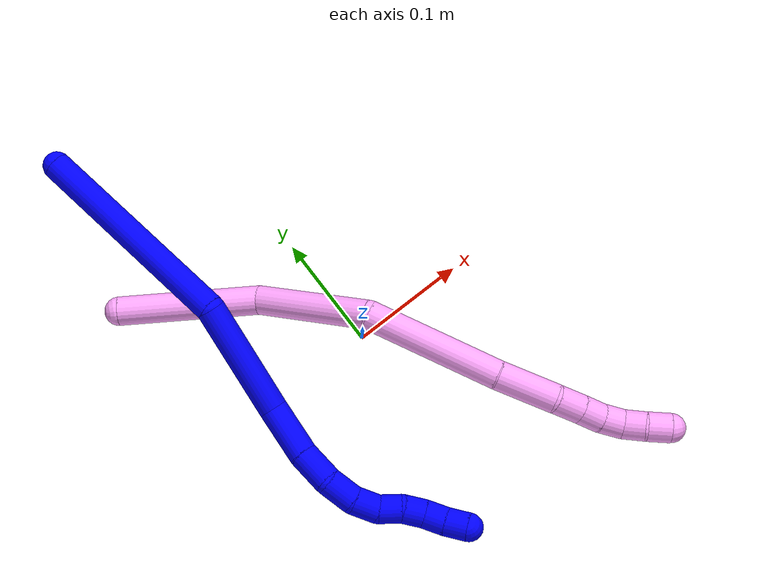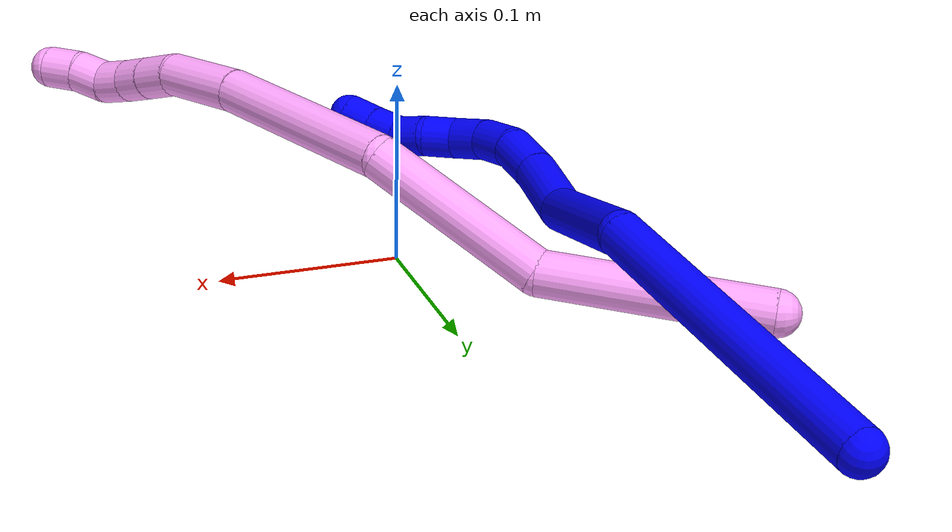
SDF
<sdf version="1.7">
 <world name="default">
  <model name="photoneo_s_sensor">
   <static>1</static>
   <pose>0 0 2 1.57079 1.57079 3.14159</pose>
   <link name="link">
    <inertial><mass>0.1</mass></inertial>
    <sensor name="sensor" type="depth">
     <update_rate>30</update_rate>
     <camera>
      <horizontal_fov>1.22</horizontal_fov>
      <image><width>1920</width><height>1200</height><format>B8G8R8</format></image>
      <clip><near>0.1</near><far>4</far></clip>
      <depth_camera><output>points</output></depth_camera>
     </camera>
     <plugin name="camera_plugin" filename="libgazebo_ros_depth_camera.so">
      <baseline>0.2</baseline>
      <alwaysOn>1</alwaysOn>
      <updateRate>0.0</updateRate>
      <cameraName>camera_ir</cameraName>
      <imageTopicName>/camera/color/image_raw</imageTopicName>
      <cameraInfoTopicName>/camera/color/camera_info</cameraInfoTopicName>
      <depthImageTopicName>/camera/depth/image_raw</depthImageTopicName>
      <depthImageCameraInfoTopicName>/camera/depth/camera_info</depthImageCameraInfoTopicName>
      <pointCloudTopicName>/camera/depth/points</pointCloudTopicName>
      <frameName>fr_optical</frameName>
      <pointCloudCutoff>0.1</pointCloudCutoff>
      <pointCloudCutoffMax>2.0</pointCloudCutoffMax>
      <distortionK1>0</distortionK1>
      <distortionK2>0</distortionK2>
      <distortionK3>0</distortionK3>
      <distortionT1>0</distortionT1>
      <distortionT2>0</distortionT2>
      <CxPrime>0</CxPrime>
      <Cx>0</Cx>
      <Cy>0</Cy>
      <focalLength>0</focalLength>
      <hackBaseline>0</hackBaseline>
     </plugin>
    </sensor>
   </link>
  </model>
  <model name="bin">
   <static>1</static>
   <link name="bottom">
    <collision name="collision-bottom">
     <pose>0 0 -0.01 0 -0 0</pose>
     <geometry><box><size>0.8 0.6 0.02</size></box></geometry>
     <surface>
      <friction><ode><mu>100</mu><mu2>100</mu2></ode></friction>
      <contact><collide_bitmask>65535</collide_bitmask></contact>
     </surface>
    </collision>
   </link>
   <link name="west_wall">
    <collision name="collision-west_wall">
     <pose>-0.41 0 0.1 0 -0 0</pose>
     <geometry><box><size>0.02 0.6 0.2</size></box></geometry>
     <surface>
      <friction><ode><mu>100</mu><mu2>100</mu2></ode></friction>
      <contact><collide_bitmask>65535</collide_bitmask></contact>
     </surface>
    </collision>
   </link>
   <link name="east_wall">
    <collision name="collision-east_wall">
     <pose>0.41 0 0.1 0 -0 0</pose>
     <geometry><box><size>0.02 0.6 0.2</size></box></geometry>
     <surface>
      <friction><ode><mu>100</mu><mu2>100</mu2></ode></friction>
      <contact><collide_bitmask>65535</collide_bitmask></contact>
     </surface>
    </collision>
   </link>
   <link name="south_wall">
    <collision name="collision-south_wall">
     <pose>0 -0.31 0.1 0 -0 0</pose>
     <geometry><box><size>0.8 0.02 0.2</size></box></geometry>
     <surface>
      <friction><ode><mu>100</mu><mu2>100</mu2></ode></friction>
      <contact><collide_bitmask>65535</collide_bitmask></contact>
     </surface>
    </collision>
   </link>
   <link name="north_wall">
    <collision name="collision-north_wall">
     <pose>0 0.31 0.1 0 -0 0</pose>
     <geometry><box><size>0.8 0.02 0.2</size></box></geometry>
     <surface>
      <friction><ode><mu>100</mu><mu2>100</mu2></ode></friction>
      <contact><collide_bitmask>65535</collide_bitmask></contact>
     </surface>
    </collision>
   </link>
  </model>
  <model name="1">
   <static>0</static>
   <link name="1">
    <collision name="collision-cylinder-e_1_1_4">
     <pose>0.021934 -0.08818 -0.027343 1.87148 0.23326 0.315351</pose>
     <geometry><cylinder><radius>0.0125</radius><length>0.189783</length></cylinder></geometry>
     <surface>
      <friction><ode><mu>1.16</mu><mu2>1.16</mu2><slip1>0</slip1><slip2>0</slip2></ode></friction>
      <contact><ode><kp>1e+06</kp><kd>1</kd><max_vel>0</max_vel><min_depth>0.001</min_depth></ode></contact>
     </surface>
    </collision>
    <visual name="visual-cylinder-e_1_1_4">
     <pose>0.021934 -0.08818 -0.027343 1.87148 0.23326 0.315351</pose>
     <geometry><cylinder><radius>0.0125</radius><length>0.189783</length></cylinder></geometry>
     <material><ambient>0 0 1 1</ambient></material>
    </visual>
    <collision name="collision-cylinder-e_2_4_5">
     <pose>0.043896 -0.213903 -0.088982 2.31102 0.000548 0.001243</pose>
     <geometry><cylinder><radius>0.0125</radius><length>0.101701</length></cylinder></geometry>
     <surface>
      <friction><ode><mu>1.16</mu><mu2>1.16</mu2><slip1>0</slip1><slip2>0</slip2></ode></friction>
      <contact><ode><kp>1e+06</kp><kd>1</kd><max_vel>0</max_vel><min_depth>0.001</min_depth></ode></contact>
     </surface>
    </collision>
    <visual name="visual-cylinder-e_2_4_5">
     <pose>0.043896 -0.213903 -0.088982 2.31102 0.000548 0.001243</pose>
     <geometry><cylinder><radius>0.0125</radius><length>0.101701</length></cylinder></geometry>
     <material><ambient>0 0 1 1</ambient></material>
    </visual>
    <collision name="collision-cylinder-e_3_5_6">
     <pose>0.0441 -0.27351 -0.131873 1.94223 0.007431 0.01087</pose>
     <geometry><cylinder><radius>0.0125</radius><length>0.047357</length></cylinder></geometry>
     <surface>
      <friction><ode><mu>1.16</mu><mu2>1.16</mu2><slip1>0</slip1><slip2>0</slip2></ode></friction>
      <contact><ode><kp>1e+06</kp><kd>1</kd><max_vel>0</max_vel><min_depth>0.001</min_depth></ode></contact>
     </surface>
    </collision>
    <visual name="visual-cylinder-e_3_5_6">
     <pose>0.0441 -0.27351 -0.131873 1.94223 0.007431 0.01087</pose>
     <geometry><cylinder><radius>0.0125</radius><length>0.047357</length></cylinder></geometry>
     <material><ambient>0 0 1 1</ambient></material>
    </visual>
    <collision name="collision-cylinder-e_4_6_7">
     <pose>0.0469 -0.310041 -0.145344 1.89596 0.170215 0.236478</pose>
     <geometry><cylinder><radius>0.0125</radius><length>0.030983</length></cylinder></geometry>
     <surface>
      <friction><ode><mu>1.16</mu><mu2>1.16</mu2><slip1>0</slip1><slip2>0</slip2></ode></friction>
      <contact><ode><kp>1e+06</kp><kd>1</kd><max_vel>0</max_vel><min_depth>0.001</min_depth></ode></contact>
     </surface>
    </collision>
    <visual name="visual-cylinder-e_4_6_7">
     <pose>0.0469 -0.310041 -0.145344 1.89596 0.170215 0.236478</pose>
     <geometry><cylinder><radius>0.0125</radius><length>0.030983</length></cylinder></geometry>
     <material><ambient>0 0 1 1</ambient></material>
    </visual>
    <collision name="collision-cylinder-e_5_7_8">
     <pose>0.054135 -0.334996 -0.157087 2.15042 0.352472 0.636458</pose>
     <geometry><cylinder><radius>0.0125</radius><length>0.026712</length></cylinder></geometry>
     <surface>
      <friction><ode><mu>1.16</mu><mu2>1.16</mu2><slip1>0</slip1><slip2>0</slip2></ode></friction>
      <contact><ode><kp>1e+06</kp><kd>1</kd><max_vel>0</max_vel><min_depth>0.001</min_depth></ode></contact>
     </surface>
    </collision>
    <visual name="visual-cylinder-e_5_7_8">
     <pose>0.054135 -0.334996 -0.157087 2.15042 0.352472 0.636458</pose>
     <geometry><cylinder><radius>0.0125</radius><length>0.026712</length></cylinder></geometry>
     <material><ambient>0 0 1 1</ambient></material>
    </visual>
    <collision name="collision-cylinder-e_6_8_9">
     <pose>0.065545 -0.352681 -0.169701 2.24477 0.635835 1.19983</pose>
     <geometry><cylinder><radius>0.0125</radius><length>0.022897</length></cylinder></geometry>
     <surface>
      <friction><ode><mu>1.16</mu><mu2>1.16</mu2><slip1>0</slip1><slip2>0</slip2></ode></friction>
      <contact><ode><kp>1e+06</kp><kd>1</kd><max_vel>0</max_vel><min_depth>0.001</min_depth></ode></contact>
     </surface>
    </collision>
    <visual name="visual-cylinder-e_6_8_9">
     <pose>0.065545 -0.352681 -0.169701 2.24477 0.635835 1.19983</pose>
     <geometry><cylinder><radius>0.0125</radius><length>0.022897</length></cylinder></geometry>
     <material><ambient>0 0 1 1</ambient></material>
    </visual>
    <collision name="collision-cylinder-e_7_9_10">
     <pose>0.081036 -0.364557 -0.177826 2.04076 1.02768 1.48721</pose>
     <geometry><cylinder><radius>0.0125</radius><length>0.020309</length></cylinder></geometry>
     <surface>
      <friction><ode><mu>1.16</mu><mu2>1.16</mu2><slip1>0</slip1><slip2>0</slip2></ode></friction>
      <contact><ode><kp>1e+06</kp><kd>1</kd><max_vel>0</max_vel><min_depth>0.001</min_depth></ode></contact>
     </surface>
    </collision>
    <visual name="visual-cylinder-e_7_9_10">
     <pose>0.081036 -0.364557 -0.177826 2.04076 1.02768 1.48721</pose>
     <geometry><cylinder><radius>0.0125</radius><length>0.020309</length></cylinder></geometry>
     <material><ambient>0 0 1 1</ambient></material>
    </visual>
    <collision name="collision-cylinder-e_8_10_11">
     <pose>0.096667 -0.374709 -0.184918 2.28186 0.76512 1.4407</pose>
     <geometry><cylinder><radius>0.0125</radius><length>0.020031</length></cylinder></geometry>
     <surface>
      <friction><ode><mu>1.16</mu><mu2>1.16</mu2><slip1>0</slip1><slip2>0</slip2></ode></friction>
      <contact><ode><kp>1e+06</kp><kd>1</kd><max_vel>0</max_vel><min_depth>0.001</min_depth></ode></contact>
     </surface>
    </collision>
    <visual name="visual-cylinder-e_8_10_11">
     <pose>0.096667 -0.374709 -0.184918 2.28186 0.76512 1.4407</pose>
     <geometry><cylinder><radius>0.0125</radius><length>0.020031</length></cylinder></geometry>
     <material><ambient>0 0 1 1</ambient></material>
    </visual>
    <collision name="collision-cylinder-e_9_11_12">
     <pose>0.109636 -0.387915 -0.192003 1.86822 0.640805 0.843691</pose>
     <geometry><cylinder><radius>0.0125</radius><length>0.020179</length></cylinder></geometry>
     <surface>
      <friction><ode><mu>1.16</mu><mu2>1.16</mu2><slip1>0</slip1><slip2>0</slip2></ode></friction>
      <contact><ode><kp>1e+06</kp><kd>1</kd><max_vel>0</max_vel><min_depth>0.001</min_depth></ode></contact>
     </surface>
    </collision>
    <visual name="visual-cylinder-e_9_11_12">
     <pose>0.109636 -0.387915 -0.192003 1.86822 0.640805 0.843691</pose>
     <geometry><cylinder><radius>0.0125</radius><length>0.020179</length></cylinder></geometry>
     <material><ambient>0 0 1 1</ambient></material>
    </visual>
    <collision name="collision-cylinder-e_10_12_2">
     <pose>0.122308 -0.40308 -0.19545 1.71475 0.72408 0.824976</pose>
     <geometry><cylinder><radius>0.0125</radius><length>0.020048</length></cylinder></geometry>
     <surface>
      <friction><ode><mu>1.16</mu><mu2>1.16</mu2><slip1>0</slip1><slip2>0</slip2></ode></friction>
      <contact><ode><kp>1e+06</kp><kd>1</kd><max_vel>0</max_vel><min_depth>0.001</min_depth></ode></contact>
     </surface>
    </collision>
    <visual name="visual-cylinder-e_10_12_2">
     <pose>0.122308 -0.40308 -0.19545 1.71475 0.72408 0.824976</pose>
     <geometry><cylinder><radius>0.0125</radius><length>0.020048</length></cylinder></geometry>
     <material><ambient>0 0 1 1</ambient></material>
    </visual>
    <collision name="collision-sphere-2">
     <pose>0.128948 -0.410511 -0.196527 0 -0 0</pose>
     <geometry><sphere><radius>0.0125</radius></sphere></geometry>
     <surface>
      <friction><ode><mu>1.16</mu><mu2>1.16</mu2><slip1>0</slip1><slip2>0</slip2></ode></friction>
      <contact><ode><kp>1e+06</kp><kd>1</kd><max_vel>0</max_vel><min_depth>0.001</min_depth></ode></contact>
     </surface>
    </collision>
    <visual name="visual-sphere-2">
     <pose>0.128948 -0.410511 -0.196527 0 -0 0</pose>
     <geometry><sphere><radius>0.0125</radius></sphere></geometry>
     <material><ambient>0 0 1 1</ambient></material>
    </visual>
    <collision name="collision-sphere-12">
     <pose>0.115668 -0.395648 -0.194373 0 -0 0</pose>
     <geometry><sphere><radius>0.0125</radius></sphere></geometry>
     <surface>
      <friction><ode><mu>1.16</mu><mu2>1.16</mu2><slip1>0</slip1><slip2>0</slip2></ode></friction>
      <contact><ode><kp>1e+06</kp><kd>1</kd><max_vel>0</max_vel><min_depth>0.001</min_depth></ode></contact>
     </surface>
    </collision>
    <visual name="visual-sphere-12">
     <pose>0.115668 -0.395648 -0.194373 0 -0 0</pose>
     <geometry><sphere><radius>0.0125</radius></sphere></geometry>
     <material><ambient>0 0 1 1</ambient></material>
    </visual>
    <collision name="collision-sphere-11">
     <pose>0.103604 -0.380183 -0.189632 0 -0 0</pose>
     <geometry><sphere><radius>0.0125</radius></sphere></geometry>
     <surface>
      <friction><ode><mu>1.16</mu><mu2>1.16</mu2><slip1>0</slip1><slip2>0</slip2></ode></friction>
      <contact><ode><kp>1e+06</kp><kd>1</kd><max_vel>0</max_vel><min_depth>0.001</min_depth></ode></contact>
     </surface>
    </collision>
    <visual name="visual-sphere-11">
     <pose>0.103604 -0.380183 -0.189632 0 -0 0</pose>
     <geometry><sphere><radius>0.0125</radius></sphere></geometry>
     <material><ambient>0 0 1 1</ambient></material>
    </visual>
    <collision name="collision-sphere-10">
     <pose>0.08973 -0.369236 -0.180203 0 -0 0</pose>
     <geometry><sphere><radius>0.0125</radius></sphere></geometry>
     <surface>
      <friction><ode><mu>1.16</mu><mu2>1.16</mu2><slip1>0</slip1><slip2>0</slip2></ode></friction>
      <contact><ode><kp>1e+06</kp><kd>1</kd><max_vel>0</max_vel><min_depth>0.001</min_depth></ode></contact>
     </surface>
    </collision>
    <visual name="visual-sphere-10">
     <pose>0.08973 -0.369236 -0.180203 0 -0 0</pose>
     <geometry><sphere><radius>0.0125</radius></sphere></geometry>
     <material><ambient>0 0 1 1</ambient></material>
    </visual>
    <collision name="collision-sphere-9">
     <pose>0.072343 -0.359878 -0.17545 0 -0 0</pose>
     <geometry><sphere><radius>0.0125</radius></sphere></geometry>
     <surface>
      <friction><ode><mu>1.16</mu><mu2>1.16</mu2><slip1>0</slip1><slip2>0</slip2></ode></friction>
      <contact><ode><kp>1e+06</kp><kd>1</kd><max_vel>0</max_vel><min_depth>0.001</min_depth></ode></contact>
     </surface>
    </collision>
    <visual name="visual-sphere-9">
     <pose>0.072343 -0.359878 -0.17545 0 -0 0</pose>
     <geometry><sphere><radius>0.0125</radius></sphere></geometry>
     <material><ambient>0 0 1 1</ambient></material>
    </visual>
    <collision name="collision-sphere-4">
     <pose>0.043868 -0.176359 -0.054686 0 -0 0</pose>
     <geometry><sphere><radius>0.0125</radius></sphere></geometry>
     <surface>
      <friction><ode><mu>1.16</mu><mu2>1.16</mu2><slip1>0</slip1><slip2>0</slip2></ode></friction>
      <contact><ode><kp>1e+06</kp><kd>1</kd><max_vel>0</max_vel><min_depth>0.001</min_depth></ode></contact>
     </surface>
    </collision>
    <visual name="visual-sphere-4">
     <pose>0.043868 -0.176359 -0.054686 0 -0 0</pose>
     <geometry><sphere><radius>0.0125</radius></sphere></geometry>
     <material><ambient>0 0 1 1</ambient></material>
    </visual>
    <collision name="collision-sphere-1">
     <geometry><sphere><radius>0.0125</radius></sphere></geometry>
     <surface>
      <friction><ode><mu>1.16</mu><mu2>1.16</mu2><slip1>0</slip1><slip2>0</slip2></ode></friction>
      <contact><ode><kp>1e+06</kp><kd>1</kd><max_vel>0</max_vel><min_depth>0.001</min_depth></ode></contact>
     </surface>
    </collision>
    <visual name="visual-sphere-1">
     <geometry><sphere><radius>0.0125</radius></sphere></geometry>
     <material><ambient>0 0 1 1</ambient></material>
    </visual>
    <collision name="collision-sphere-8">
     <pose>0.058746 -0.345484 -0.163953 0 -0 0</pose>
     <geometry><sphere><radius>0.0125</radius></sphere></geometry>
     <surface>
      <friction><ode><mu>1.16</mu><mu2>1.16</mu2><slip1>0</slip1><slip2>0</slip2></ode></friction>
      <contact><ode><kp>1e+06</kp><kd>1</kd><max_vel>0</max_vel><min_depth>0.001</min_depth></ode></contact>
     </surface>
    </collision>
    <visual name="visual-sphere-8">
     <pose>0.058746 -0.345484 -0.163953 0 -0 0</pose>
     <geometry><sphere><radius>0.0125</radius></sphere></geometry>
     <material><ambient>0 0 1 1</ambient></material>
    </visual>
    <collision name="collision-sphere-5">
     <pose>0.043924 -0.251446 -0.123279 0 -0 0</pose>
     <geometry><sphere><radius>0.0125</radius></sphere></geometry>
     <surface>
      <friction><ode><mu>1.16</mu><mu2>1.16</mu2><slip1>0</slip1><slip2>0</slip2></ode></friction>
      <contact><ode><kp>1e+06</kp><kd>1</kd><max_vel>0</max_vel><min_depth>0.001</min_depth></ode></contact>
     </surface>
    </collision>
    <visual name="visual-sphere-5">
     <pose>0.043924 -0.251446 -0.123279 0 -0 0</pose>
     <geometry><sphere><radius>0.0125</radius></sphere></geometry>
     <material><ambient>0 0 1 1</ambient></material>
    </visual>
    <collision name="collision-sphere-6">
     <pose>0.044276 -0.295573 -0.140467 0 -0 0</pose>
     <geometry><sphere><radius>0.0125</radius></sphere></geometry>
     <surface>
      <friction><ode><mu>1.16</mu><mu2>1.16</mu2><slip1>0</slip1><slip2>0</slip2></ode></friction>
      <contact><ode><kp>1e+06</kp><kd>1</kd><max_vel>0</max_vel><min_depth>0.001</min_depth></ode></contact>
     </surface>
    </collision>
    <visual name="visual-sphere-6">
     <pose>0.044276 -0.295573 -0.140467 0 -0 0</pose>
     <geometry><sphere><radius>0.0125</radius></sphere></geometry>
     <material><ambient>0 0 1 1</ambient></material>
    </visual>
    <collision name="collision-sphere-7">
     <pose>0.049525 -0.324508 -0.150222 0 -0 0</pose>
     <geometry><sphere><radius>0.0125</radius></sphere></geometry>
     <surface>
      <friction><ode><mu>1.16</mu><mu2>1.16</mu2><slip1>0</slip1><slip2>0</slip2></ode></friction>
      <contact><ode><kp>1e+06</kp><kd>1</kd><max_vel>0</max_vel><min_depth>0.001</min_depth></ode></contact>
     </surface>
    </collision>
    <visual name="visual-sphere-7">
     <pose>0.049525 -0.324508 -0.150222 0 -0 0</pose>
     <geometry><sphere><radius>0.0125</radius></sphere></geometry>
     <material><ambient>0 0 1 1</ambient></material>
    </visual>
    <inertial>
     <pose>0.046724 -0.217779 -0.096355 0 -0 0</pose>
     <mass>0.5</mass>
     <inertia>
      <ixx>0.000836</ixx>
      <ixy>0</ixy>
      <ixz>0</ixz>
      <iyy>-3.8e-05</iyy>
      <iyz>0</iyz>
      <izz>0.000469</izz>
     </inertia>
    </inertial>
   </link>
   <pose>-0.119352 0.279738 0.012337 -0.476734 0.057044 -0.082074</pose>
  </model>
  <model name="4">
   <static>0</static>
   <link name="4">
    <collision name="collision-cylinder-e_1_1_4">
     <pose>0.006272 -0.006898 -0.060333 3.02775 0.102923 1.46993</pose>
     <geometry><cylinder><radius>0.0125</radius><length>0.122099</length></cylinder></geometry>
     <surface>
      <friction><ode><mu>1.16</mu><mu2>1.16</mu2><slip1>0</slip1><slip2>0</slip2></ode></friction>
      <contact><ode><kp>1e+06</kp><kd>1</kd><max_vel>0</max_vel><min_depth>0.001</min_depth></ode></contact>
     </surface>
    </collision>
    <visual name="visual-cylinder-e_1_1_4">
     <pose>0.006272 -0.006898 -0.060333 3.02775 0.102923 1.46993</pose>
     <geometry><cylinder><radius>0.0125</radius><length>0.122099</length></cylinder></geometry>
     <material><ambient>1 0.65098 0.996078 1</ambient></material>
    </visual>
    <collision name="collision-cylinder-e_2_4_5">
     <pose>0.034747 -0.034566 -0.16373 2.69221 0.434761 1.53663</pose>
     <geometry><cylinder><radius>0.0125</radius><length>0.105428</length></cylinder></geometry>
     <surface>
      <friction><ode><mu>1.16</mu><mu2>1.16</mu2><slip1>0</slip1><slip2>0</slip2></ode></friction>
      <contact><ode><kp>1e+06</kp><kd>1</kd><max_vel>0</max_vel><min_depth>0.001</min_depth></ode></contact>
     </surface>
    </collision>
    <visual name="visual-cylinder-e_2_4_5">
     <pose>0.034747 -0.034566 -0.16373 2.69221 0.434761 1.53663</pose>
     <geometry><cylinder><radius>0.0125</radius><length>0.105428</length></cylinder></geometry>
     <material><ambient>1 0.65098 0.996078 1</ambient></material>
    </visual>
    <collision name="collision-cylinder-e_3_5_6">
     <pose>0.057949 -0.089899 -0.254629 2.51589 0.016923 0.052306</pose>
     <geometry><cylinder><radius>0.0125</radius><length>0.118049</length></cylinder></geometry>
     <surface>
      <friction><ode><mu>1.16</mu><mu2>1.16</mu2><slip1>0</slip1><slip2>0</slip2></ode></friction>
      <contact><ode><kp>1e+06</kp><kd>1</kd><max_vel>0</max_vel><min_depth>0.001</min_depth></ode></contact>
     </surface>
    </collision>
    <visual name="visual-cylinder-e_3_5_6">
     <pose>0.057949 -0.089899 -0.254629 2.51589 0.016923 0.052306</pose>
     <geometry><cylinder><radius>0.0125</radius><length>0.118049</length></cylinder></geometry>
     <material><ambient>1 0.65098 0.996078 1</ambient></material>
    </visual>
    <collision name="collision-cylinder-e_4_6_7">
     <pose>0.057169 -0.137725 -0.324039 2.59042 -0.070136 -0.246862</pose>
     <geometry><cylinder><radius>0.0125</radius><length>0.050775</length></cylinder></geometry>
     <surface>
      <friction><ode><mu>1.16</mu><mu2>1.16</mu2><slip1>0</slip1><slip2>0</slip2></ode></friction>
      <contact><ode><kp>1e+06</kp><kd>1</kd><max_vel>0</max_vel><min_depth>0.001</min_depth></ode></contact>
     </surface>
    </collision>
    <visual name="visual-cylinder-e_4_6_7">
     <pose>0.057169 -0.137725 -0.324039 2.59042 -0.070136 -0.246862</pose>
     <geometry><cylinder><radius>0.0125</radius><length>0.050775</length></cylinder></geometry>
     <material><ambient>1 0.65098 0.996078 1</ambient></material>
    </visual>
    <collision name="collision-cylinder-e_5_7_8">
     <pose>0.051531 -0.156083 -0.355514 2.6662 -0.333577 -1.21455</pose>
     <geometry><cylinder><radius>0.0125</radius><length>0.023569</length></cylinder></geometry>
     <surface>
      <friction><ode><mu>1.16</mu><mu2>1.16</mu2><slip1>0</slip1><slip2>0</slip2></ode></friction>
      <contact><ode><kp>1e+06</kp><kd>1</kd><max_vel>0</max_vel><min_depth>0.001</min_depth></ode></contact>
     </surface>
    </collision>
    <visual name="visual-cylinder-e_5_7_8">
     <pose>0.051531 -0.156083 -0.355514 2.6662 -0.333577 -1.21455</pose>
     <geometry><cylinder><radius>0.0125</radius><length>0.023569</length></cylinder></geometry>
     <material><ambient>1 0.65098 0.996078 1</ambient></material>
    </visual>
    <collision name="collision-cylinder-e_6_8_9">
     <pose>0.044362 -0.165707 -0.373694 2.64119 -0.337405 -1.17575</pose>
     <geometry><cylinder><radius>0.0125</radius><length>0.020002</length></cylinder></geometry>
     <surface>
      <friction><ode><mu>1.16</mu><mu2>1.16</mu2><slip1>0</slip1><slip2>0</slip2></ode></friction>
      <contact><ode><kp>1e+06</kp><kd>1</kd><max_vel>0</max_vel><min_depth>0.001</min_depth></ode></contact>
     </surface>
    </collision>
    <visual name="visual-cylinder-e_6_8_9">
     <pose>0.044362 -0.165707 -0.373694 2.64119 -0.337405 -1.17575</pose>
     <geometry><cylinder><radius>0.0125</radius><length>0.020002</length></cylinder></geometry>
     <material><ambient>1 0.65098 0.996078 1</ambient></material>
    </visual>
    <collision name="collision-cylinder-e_7_9_10">
     <pose>0.038585 -0.173817 -0.391005 2.76396 -0.248568 -1.15802</pose>
     <geometry><cylinder><radius>0.0125</radius><length>0.020047</length></cylinder></geometry>
     <surface>
      <friction><ode><mu>1.16</mu><mu2>1.16</mu2><slip1>0</slip1><slip2>0</slip2></ode></friction>
      <contact><ode><kp>1e+06</kp><kd>1</kd><max_vel>0</max_vel><min_depth>0.001</min_depth></ode></contact>
     </surface>
    </collision>
    <visual name="visual-cylinder-e_7_9_10">
     <pose>0.038585 -0.173817 -0.391005 2.76396 -0.248568 -1.15802</pose>
     <geometry><cylinder><radius>0.0125</radius><length>0.020047</length></cylinder></geometry>
     <material><ambient>1 0.65098 0.996078 1</ambient></material>
    </visual>
    <collision name="collision-cylinder-e_8_10_11">
     <pose>0.038237 -0.180535 -0.409294 2.81509 0.213324 1.15277</pose>
     <geometry><cylinder><radius>0.0125</radius><length>0.020003</length></cylinder></geometry>
     <surface>
      <friction><ode><mu>1.16</mu><mu2>1.16</mu2><slip1>0</slip1><slip2>0</slip2></ode></friction>
      <contact><ode><kp>1e+06</kp><kd>1</kd><max_vel>0</max_vel><min_depth>0.001</min_depth></ode></contact>
     </surface>
    </collision>
    <visual name="visual-cylinder-e_8_10_11">
     <pose>0.038237 -0.180535 -0.409294 2.81509 0.213324 1.15277</pose>
     <geometry><cylinder><radius>0.0125</radius><length>0.020003</length></cylinder></geometry>
     <material><ambient>1 0.65098 0.996078 1</ambient></material>
    </visual>
    <collision name="collision-cylinder-e_9_11_2">
     <pose>0.040691 -0.186045 -0.428275 2.90201 0.033604 0.277405</pose>
     <geometry><cylinder><radius>0.0125</radius><length>0.020028</length></cylinder></geometry>
     <surface>
      <friction><ode><mu>1.16</mu><mu2>1.16</mu2><slip1>0</slip1><slip2>0</slip2></ode></friction>
      <contact><ode><kp>1e+06</kp><kd>1</kd><max_vel>0</max_vel><min_depth>0.001</min_depth></ode></contact>
     </surface>
    </collision>
    <visual name="visual-cylinder-e_9_11_2">
     <pose>0.040691 -0.186045 -0.428275 2.90201 0.033604 0.277405</pose>
     <geometry><cylinder><radius>0.0125</radius><length>0.020028</length></cylinder></geometry>
     <material><ambient>1 0.65098 0.996078 1</ambient></material>
    </visual>
    <collision name="collision-sphere-2">
     <pose>0.041027 -0.18842 -0.437998 0 -0 0</pose>
     <geometry><sphere><radius>0.0125</radius></sphere></geometry>
     <surface>
      <friction><ode><mu>1.16</mu><mu2>1.16</mu2><slip1>0</slip1><slip2>0</slip2></ode></friction>
      <contact><ode><kp>1e+06</kp><kd>1</kd><max_vel>0</max_vel><min_depth>0.001</min_depth></ode></contact>
     </surface>
    </collision>
    <visual name="visual-sphere-2">
     <pose>0.041027 -0.18842 -0.437998 0 -0 0</pose>
     <geometry><sphere><radius>0.0125</radius></sphere></geometry>
     <material><ambient>1 0.65098 0.996078 1</ambient></material>
    </visual>
    <collision name="collision-sphere-11">
     <pose>0.040354 -0.18367 -0.418553 0 -0 0</pose>
     <geometry><sphere><radius>0.0125</radius></sphere></geometry>
     <surface>
      <friction><ode><mu>1.16</mu><mu2>1.16</mu2><slip1>0</slip1><slip2>0</slip2></ode></friction>
      <contact><ode><kp>1e+06</kp><kd>1</kd><max_vel>0</max_vel><min_depth>0.001</min_depth></ode></contact>
     </surface>
    </collision>
    <visual name="visual-sphere-11">
     <pose>0.040354 -0.18367 -0.418553 0 -0 0</pose>
     <geometry><sphere><radius>0.0125</radius></sphere></geometry>
     <material><ambient>1 0.65098 0.996078 1</ambient></material>
    </visual>
    <collision name="collision-sphere-10">
     <pose>0.036119 -0.177399 -0.400035 0 -0 0</pose>
     <geometry><sphere><radius>0.0125</radius></sphere></geometry>
     <surface>
      <friction><ode><mu>1.16</mu><mu2>1.16</mu2><slip1>0</slip1><slip2>0</slip2></ode></friction>
      <contact><ode><kp>1e+06</kp><kd>1</kd><max_vel>0</max_vel><min_depth>0.001</min_depth></ode></contact>
     </surface>
    </collision>
    <visual name="visual-sphere-10">
     <pose>0.036119 -0.177399 -0.400035 0 -0 0</pose>
     <geometry><sphere><radius>0.0125</radius></sphere></geometry>
     <material><ambient>1 0.65098 0.996078 1</ambient></material>
    </visual>
    <collision name="collision-sphere-9">
     <pose>0.041051 -0.170235 -0.381974 0 -0 0</pose>
     <geometry><sphere><radius>0.0125</radius></sphere></geometry>
     <surface>
      <friction><ode><mu>1.16</mu><mu2>1.16</mu2><slip1>0</slip1><slip2>0</slip2></ode></friction>
      <contact><ode><kp>1e+06</kp><kd>1</kd><max_vel>0</max_vel><min_depth>0.001</min_depth></ode></contact>
     </surface>
    </collision>
    <visual name="visual-sphere-9">
     <pose>0.041051 -0.170235 -0.381974 0 -0 0</pose>
     <geometry><sphere><radius>0.0125</radius></sphere></geometry>
     <material><ambient>1 0.65098 0.996078 1</ambient></material>
    </visual>
    <collision name="collision-sphere-4">
     <pose>0.012545 -0.013797 -0.120666 0 -0 0</pose>
     <geometry><sphere><radius>0.0125</radius></sphere></geometry>
     <surface>
      <friction><ode><mu>1.16</mu><mu2>1.16</mu2><slip1>0</slip1><slip2>0</slip2></ode></friction>
      <contact><ode><kp>1e+06</kp><kd>1</kd><max_vel>0</max_vel><min_depth>0.001</min_depth></ode></contact>
     </surface>
    </collision>
    <visual name="visual-sphere-4">
     <pose>0.012545 -0.013797 -0.120666 0 -0 0</pose>
     <geometry><sphere><radius>0.0125</radius></sphere></geometry>
     <material><ambient>1 0.65098 0.996078 1</ambient></material>
    </visual>
    <collision name="collision-sphere-1">
     <geometry><sphere><radius>0.0125</radius></sphere></geometry>
     <surface>
      <friction><ode><mu>1.16</mu><mu2>1.16</mu2><slip1>0</slip1><slip2>0</slip2></ode></friction>
      <contact><ode><kp>1e+06</kp><kd>1</kd><max_vel>0</max_vel><min_depth>0.001</min_depth></ode></contact>
     </surface>
    </collision>
    <visual name="visual-sphere-1">
     <geometry><sphere><radius>0.0125</radius></sphere></geometry>
     <material><ambient>1 0.65098 0.996078 1</ambient></material>
    </visual>
    <collision name="collision-sphere-8">
     <pose>0.047673 -0.16118 -0.365414 0 -0 0</pose>
     <geometry><sphere><radius>0.0125</radius></sphere></geometry>
     <surface>
      <friction><ode><mu>1.16</mu><mu2>1.16</mu2><slip1>0</slip1><slip2>0</slip2></ode></friction>
      <contact><ode><kp>1e+06</kp><kd>1</kd><max_vel>0</max_vel><min_depth>0.001</min_depth></ode></contact>
     </surface>
    </collision>
    <visual name="visual-sphere-8">
     <pose>0.047673 -0.16118 -0.365414 0 -0 0</pose>
     <geometry><sphere><radius>0.0125</radius></sphere></geometry>
     <material><ambient>1 0.65098 0.996078 1</ambient></material>
    </visual>
    <collision name="collision-sphere-5">
     <pose>0.05695 -0.055335 -0.206793 0 -0 0</pose>
     <geometry><sphere><radius>0.0125</radius></sphere></geometry>
     <surface>
      <friction><ode><mu>1.16</mu><mu2>1.16</mu2><slip1>0</slip1><slip2>0</slip2></ode></friction>
      <contact><ode><kp>1e+06</kp><kd>1</kd><max_vel>0</max_vel><min_depth>0.001</min_depth></ode></contact>
     </surface>
    </collision>
    <visual name="visual-sphere-5">
     <pose>0.05695 -0.055335 -0.206793 0 -0 0</pose>
     <geometry><sphere><radius>0.0125</radius></sphere></geometry>
     <material><ambient>1 0.65098 0.996078 1</ambient></material>
    </visual>
    <collision name="collision-sphere-6">
     <pose>0.058948 -0.124462 -0.302464 0 -0 0</pose>
     <geometry><sphere><radius>0.0125</radius></sphere></geometry>
     <surface>
      <friction><ode><mu>1.16</mu><mu2>1.16</mu2><slip1>0</slip1><slip2>0</slip2></ode></friction>
      <contact><ode><kp>1e+06</kp><kd>1</kd><max_vel>0</max_vel><min_depth>0.001</min_depth></ode></contact>
     </surface>
    </collision>
    <visual name="visual-sphere-6">
     <pose>0.058948 -0.124462 -0.302464 0 -0 0</pose>
     <geometry><sphere><radius>0.0125</radius></sphere></geometry>
     <material><ambient>1 0.65098 0.996078 1</ambient></material>
    </visual>
    <collision name="collision-sphere-7">
     <pose>0.05539 -0.150987 -0.345614 0 -0 0</pose>
     <geometry><sphere><radius>0.0125</radius></sphere></geometry>
     <surface>
      <friction><ode><mu>1.16</mu><mu2>1.16</mu2><slip1>0</slip1><slip2>0</slip2></ode></friction>
      <contact><ode><kp>1e+06</kp><kd>1</kd><max_vel>0</max_vel><min_depth>0.001</min_depth></ode></contact>
     </surface>
    </collision>
    <visual name="visual-sphere-7">
     <pose>0.05539 -0.150987 -0.345614 0 -0 0</pose>
     <geometry><sphere><radius>0.0125</radius></sphere></geometry>
     <material><ambient>1 0.65098 0.996078 1</ambient></material>
    </visual>
    <inertial>
     <pose>0.037256 -0.079814 -0.223194 0 -0 0</pose>
     <mass>0.5</mass>
     <inertia>
      <ixx>0.000428</ixx>
      <ixy>0</ixy>
      <ixz>0</ixz>
      <iyy>0.000108</iyy>
      <iyz>0</iyz>
      <izz>5.7e-05</izz>
     </inertia>
    </inertial>
   </link>
   <pose>-0.152775 0.145409 0.011448 -1.22338 -1.37752 0.740443</pose>
  </model>
 </world>
</sdf>
